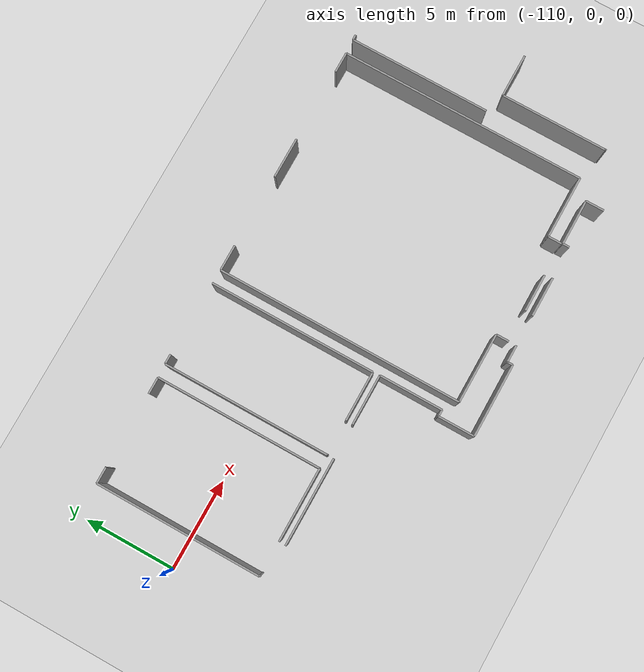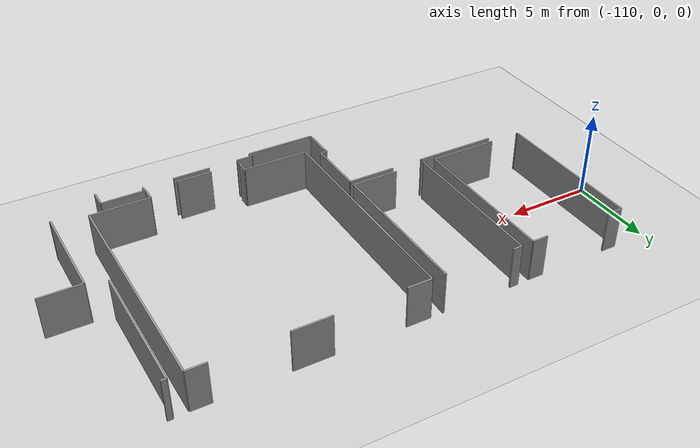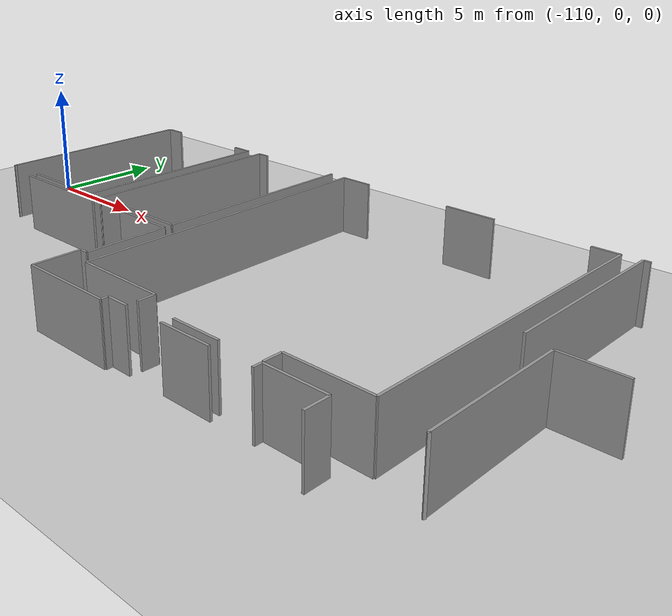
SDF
<sdf version="1.6">
 <world name="default">
  <model name="ground_plane">
   <static>1</static>
   <link name="link">
    <collision name="collision">
     <geometry><plane><normal>0 0 1</normal><size>100 100</size></plane></geometry>
     <surface><friction><ode><mu>100</mu><mu2>50</mu2></ode></friction></surface>
    </collision>
    <visual name="visual">
     <cast_shadows>0</cast_shadows>
     <geometry><plane><normal>0 0 1</normal><size>100 100</size></plane></geometry>
     <material>
      <script><uri>file://media/materials/scripts/gazebo.material</uri><name>Gazebo/Grey</name></script>
     </material>
    </visual>
   </link>
  </model>
  <model name="0510035343_A_40_1_102">
   <static>1</static>
   <link name="Wall_12">
    <collision name="Wall_12_Collision">
     <geometry><box><size>4.78415690755 0.1 2.5</size></box></geometry>
     <pose>2.39207845378 0 1.25 0 0 0</pose>
    </collision>
    <visual name="Wall_12_Visual">
     <pose>2.39207845378 0 1.25 0 0 0</pose>
     <geometry><box><size>4.78415690755 0.1 2.5</size></box></geometry>
     <material>
      <script><uri>file://media/materials/scripts/gazebo.material</uri><name>Gazebo/Grey</name></script>
      <ambient>1 1 1 1</ambient>
     </material>
    </visual>
    <pose>10.6791075566 -28.6828525183 0 0 0 0.0</pose>
   </link>
   <link name="Wall_13">
    <collision name="Wall_13_Collision">
     <geometry><box><size>2.77127170015 0.1 2.5</size></box></geometry>
     <pose>1.38563585007 0 1.25 0 0 0</pose>
    </collision>
    <visual name="Wall_13_Visual">
     <pose>1.38563585007 0 1.25 0 0 0</pose>
     <geometry><box><size>2.77127170015 0.1 2.5</size></box></geometry>
     <material>
      <script><uri>file://media/materials/scripts/gazebo.material</uri><name>Gazebo/Grey</name></script>
      <ambient>1 1 1 1</ambient>
     </material>
    </visual>
    <pose>17.3469167539 -28.6828525183 0 0 0 0.0</pose>
   </link>
   <link name="Wall_14">
    <collision name="Wall_14_Collision">
     <geometry><box><size>3.48776540036 0.1 2.5</size></box></geometry>
     <pose>1.74388270018 0 1.25 0 0 0</pose>
    </collision>
    <visual name="Wall_14_Visual">
     <pose>1.74388270018 0 1.25 0 0 0</pose>
     <geometry><box><size>3.48776540036 0.1 2.5</size></box></geometry>
     <material>
      <script><uri>file://media/materials/scripts/gazebo.material</uri><name>Gazebo/Grey</name></script>
      <ambient>1 1 1 1</ambient>
     </material>
    </visual>
    <pose>20.1181884541 -28.6828525183 0 0 0 -1.57079632679</pose>
   </link>
   <link name="Wall_15">
    <collision name="Wall_15_Collision">
     <geometry><box><size>0.367133200038 0.1 2.5</size></box></geometry>
     <pose>0.183566600019 0 1.25 0 0 0</pose>
    </collision>
    <visual name="Wall_15_Visual">
     <pose>0.183566600019 0 1.25 0 0 0</pose>
     <geometry><box><size>0.367133200038 0.1 2.5</size></box></geometry>
     <material>
      <script><uri>file://media/materials/scripts/gazebo.material</uri><name>Gazebo/Grey</name></script>
      <ambient>1 1 1 1</ambient>
     </material>
    </visual>
    <pose>20.1181884541 -32.1706179187 0 0 0 3.14159265359</pose>
   </link>
   <link name="Wall_16">
    <collision name="Wall_16_Collision">
     <geometry><box><size>1.98673394903 0.1 2.5</size></box></geometry>
     <pose>0.993366974515 0 1.25 0 0 0</pose>
    </collision>
    <visual name="Wall_16_Visual">
     <pose>0.993366974515 0 1.25 0 0 0</pose>
     <geometry><box><size>1.98673394903 0.1 2.5</size></box></geometry>
     <material>
      <script><uri>file://media/materials/scripts/gazebo.material</uri><name>Gazebo/Grey</name></script>
      <ambient>1 1 1 1</ambient>
     </material>
    </visual>
    <pose>19.7510552541 -32.1706179187 0 0 0 -1.57079632679</pose>
   </link>
   <link name="Wall_17">
    <collision name="Wall_17_Collision">
     <geometry><box><size>4.00571265353 0.1 2.5</size></box></geometry>
     <pose>2.00285632676 0 1.25 0 0 0</pose>
    </collision>
    <visual name="Wall_17_Visual">
     <pose>2.00285632676 0 1.25 0 0 0</pose>
     <geometry><box><size>4.00571265353 0.1 2.5</size></box></geometry>
     <material>
      <script><uri>file://media/materials/scripts/gazebo.material</uri><name>Gazebo/Grey</name></script>
      <ambient>1 1 1 1</ambient>
     </material>
    </visual>
    <pose>19.7510552541 -34.1573518677 0 0 0 0.0</pose>
   </link>
   <link name="Wall_18">
    <collision name="Wall_18_Collision">
     <geometry><box><size>0.300104731981 0.1 2.5</size></box></geometry>
     <pose>0.150052365991 0 1.25 0 0 0</pose>
    </collision>
    <visual name="Wall_18_Visual">
     <pose>0.150052365991 0 1.25 0 0 0</pose>
     <geometry><box><size>0.300104731981 0.1 2.5</size></box></geometry>
     <material>
      <script><uri>file://media/materials/scripts/gazebo.material</uri><name>Gazebo/Grey</name></script>
      <ambient>1 1 1 1</ambient>
     </material>
    </visual>
    <pose>23.7567679076 -34.1573518677 0 0 0 1.57079632679</pose>
   </link>
   <link name="Wall_19">
    <collision name="Wall_19_Collision">
     <geometry><box><size>0.934082325685 0.1 2.5</size></box></geometry>
     <pose>0.467041162842 0 1.25 0 0 0</pose>
    </collision>
    <visual name="Wall_19_Visual">
     <pose>0.467041162842 0 1.25 0 0 0</pose>
     <geometry><box><size>0.934082325685 0.1 2.5</size></box></geometry>
     <material>
      <script><uri>file://media/materials/scripts/gazebo.material</uri><name>Gazebo/Grey</name></script>
      <ambient>1 1 1 1</ambient>
     </material>
    </visual>
    <pose>23.7567679076 -33.8572471357 0 0 0 0.0</pose>
   </link>
   <link name="Wall_20">
    <collision name="Wall_20_Collision">
     <geometry><box><size>2.16242978197 0.1 2.5</size></box></geometry>
     <pose>1.08121489098 0 1.25 0 0 0</pose>
    </collision>
    <visual name="Wall_20_Visual">
     <pose>1.08121489098 0 1.25 0 0 0</pose>
     <geometry><box><size>2.16242978197 0.1 2.5</size></box></geometry>
     <material>
      <script><uri>file://media/materials/scripts/gazebo.material</uri><name>Gazebo/Grey</name></script>
      <ambient>1 1 1 1</ambient>
     </material>
    </visual>
    <pose>26.3932209845 -33.8572471357 0 0 0 0.0</pose>
   </link>
   <link name="Wall_21">
    <collision name="Wall_21_Collision">
     <geometry><box><size>0.365863721476 0.1 2.5</size></box></geometry>
     <pose>0.182931860738 0 1.25 0 0 0</pose>
    </collision>
    <visual name="Wall_21_Visual">
     <pose>0.182931860738 0 1.25 0 0 0</pose>
     <geometry><box><size>0.365863721476 0.1 2.5</size></box></geometry>
     <material>
      <script><uri>file://media/materials/scripts/gazebo.material</uri><name>Gazebo/Grey</name></script>
      <ambient>1 1 1 1</ambient>
     </material>
    </visual>
    <pose>30.3458694341 -33.8572471357 0 0 0 1.57079632679</pose>
   </link>
   <link name="Wall_22">
    <collision name="Wall_22_Collision">
     <geometry><box><size>2.49960328795 0.1 2.5</size></box></geometry>
     <pose>1.24980164397 0 1.25 0 0 0</pose>
    </collision>
    <visual name="Wall_22_Visual">
     <pose>1.24980164397 0 1.25 0 0 0</pose>
     <geometry><box><size>2.49960328795 0.1 2.5</size></box></geometry>
     <material>
      <script><uri>file://media/materials/scripts/gazebo.material</uri><name>Gazebo/Grey</name></script>
      <ambient>1 1 1 1</ambient>
     </material>
    </visual>
    <pose>30.3458694341 -33.4913834143 0 0 0 0.0</pose>
   </link>
   <link name="Wall_23">
    <collision name="Wall_23_Collision">
     <geometry><box><size>1.00974324796 0.1 2.5</size></box></geometry>
     <pose>0.50487162398 0 1.25 0 0 0</pose>
    </collision>
    <visual name="Wall_23_Visual">
     <pose>0.50487162398 0 1.25 0 0 0</pose>
     <geometry><box><size>1.00974324796 0.1 2.5</size></box></geometry>
     <material>
      <script><uri>file://media/materials/scripts/gazebo.material</uri><name>Gazebo/Grey</name></script>
      <ambient>1 1 1 1</ambient>
     </material>
    </visual>
    <pose>32.8454727221 -33.4913834143 0 0 0 -1.57079632679</pose>
   </link>
   <link name="Wall_56">
    <collision name="Wall_56_Collision">
     <geometry><box><size>9.10774699292 0.1 2.5</size></box></geometry>
     <pose>4.55387349646 0 1.25 0 0 0</pose>
    </collision>
    <visual name="Wall_56_Visual">
     <pose>4.55387349646 0 1.25 0 0 0</pose>
     <geometry><box><size>9.10774699292 0.1 2.5</size></box></geometry>
     <material>
      <script><uri>file://media/materials/scripts/gazebo.material</uri><name>Gazebo/Grey</name></script>
      <ambient>1 1 1 1</ambient>
     </material>
    </visual>
    <pose>8.80865784379 -28.3098797169 0 0 0 1.57079632679</pose>
   </link>
   <link name="Wall_57">
    <collision name="Wall_57_Collision">
     <geometry><box><size>0.89549017741 0.1 2.5</size></box></geometry>
     <pose>0.447745088705 0 1.25 0 0 0</pose>
    </collision>
    <visual name="Wall_57_Visual">
     <pose>0.447745088705 0 1.25 0 0 0</pose>
     <geometry><box><size>0.89549017741 0.1 2.5</size></box></geometry>
     <material>
      <script><uri>file://media/materials/scripts/gazebo.material</uri><name>Gazebo/Grey</name></script>
      <ambient>1 1 1 1</ambient>
     </material>
    </visual>
    <pose>8.80865784379 -19.202132724 0 0 0 0.0</pose>
   </link>
   <link name="Wall_58">
    <collision name="Wall_58_Collision">
     <geometry><box><size>0.913008981561 0.1 2.5</size></box></geometry>
     <pose>0.45650449078 0 1.25 0 0 0</pose>
    </collision>
    <visual name="Wall_58_Visual">
     <pose>0.45650449078 0 1.25 0 0 0</pose>
     <geometry><box><size>0.913008981561 0.1 2.5</size></box></geometry>
     <material>
      <script><uri>file://media/materials/scripts/gazebo.material</uri><name>Gazebo/Grey</name></script>
      <ambient>1 1 1 1</ambient>
     </material>
    </visual>
    <pose>13.8038020883 -19.202132724 0 0 0 0.0</pose>
   </link>
   <link name="Wall_59">
    <collision name="Wall_59_Collision">
     <geometry><box><size>9.11587165572 0.1 2.5</size></box></geometry>
     <pose>4.55793582786 0 1.25 0 0 0</pose>
    </collision>
    <visual name="Wall_59_Visual">
     <pose>4.55793582786 0 1.25 0 0 0</pose>
     <geometry><box><size>9.11587165572 0.1 2.5</size></box></geometry>
     <material>
      <script><uri>file://media/materials/scripts/gazebo.material</uri><name>Gazebo/Grey</name></script>
      <ambient>1 1 1 1</ambient>
     </material>
    </visual>
    <pose>14.7168110699 -19.202132724 0 0 0 -1.57079632679</pose>
   </link>
   <link name="Wall_60">
    <collision name="Wall_60_Collision">
     <geometry><box><size>4.0173918563 0.1 2.5</size></box></geometry>
     <pose>2.00869592815 0 1.25 0 0 0</pose>
    </collision>
    <visual name="Wall_60_Visual">
     <pose>2.00869592815 0 1.25 0 0 0</pose>
     <geometry><box><size>4.0173918563 0.1 2.5</size></box></geometry>
     <material>
      <script><uri>file://media/materials/scripts/gazebo.material</uri><name>Gazebo/Grey</name></script>
      <ambient>1 1 1 1</ambient>
     </material>
    </visual>
    <pose>14.7168110699 -28.3180043797 0 0 0 3.14159265359</pose>
   </link>
   <link name="Wall_61">
    <collision name="Wall_61_Collision">
     <geometry><box><size>0.0740766575865 0.1 2.5</size></box></geometry>
     <pose>0.0370383287933 0 1.25 0 0 0</pose>
    </collision>
    <visual name="Wall_61_Visual">
     <pose>0.0370383287933 0 1.25 0 0 0</pose>
     <geometry><box><size>0.0740766575865 0.1 2.5</size></box></geometry>
     <material>
      <script><uri>file://media/materials/scripts/gazebo.material</uri><name>Gazebo/Grey</name></script>
      <ambient>1 1 1 1</ambient>
     </material>
    </visual>
    <pose>8.88228760037 -28.3180043797 0 0 0 3.03169243454</pose>
   </link>
   <link name="Wall_62">
    <collision name="Wall_62_Collision">
     <geometry><box><size>9.16411184106 0.1 2.5</size></box></geometry>
     <pose>4.58205592053 0 1.25 0 0 0</pose>
    </collision>
    <visual name="Wall_62_Visual">
     <pose>4.58205592053 0 1.25 0 0 0</pose>
     <geometry><box><size>9.16411184106 0.1 2.5</size></box></geometry>
     <material>
      <script><uri>file://media/materials/scripts/gazebo.material</uri><name>Gazebo/Grey</name></script>
      <ambient>1 1 1 1</ambient>
     </material>
    </visual>
    <pose>15.4637722555 -28.3294296868 0 0 0 1.57079632679</pose>
   </link>
   <link name="Wall_63">
    <collision name="Wall_63_Collision">
     <geometry><box><size>0.53470437018 0.1 2.5</size></box></geometry>
     <pose>0.26735218509 0 1.25 0 0 0</pose>
    </collision>
    <visual name="Wall_63_Visual">
     <pose>0.26735218509 0 1.25 0 0 0</pose>
     <geometry><box><size>0.53470437018 0.1 2.5</size></box></geometry>
     <material>
      <script><uri>file://media/materials/scripts/gazebo.material</uri><name>Gazebo/Grey</name></script>
      <ambient>1 1 1 1</ambient>
     </material>
    </visual>
    <pose>15.4637722555 -19.1653178457 0 0 0 0.0</pose>
   </link>
   <link name="Wall_64">
    <collision name="Wall_64_Collision">
     <geometry><box><size>9.13923006125 0.1 2.5</size></box></geometry>
     <pose>4.56961503063 0 1.25 0 0 0</pose>
    </collision>
    <visual name="Wall_64_Visual">
     <pose>4.56961503063 0 1.25 0 0 0</pose>
     <geometry><box><size>9.13923006125 0.1 2.5</size></box></geometry>
     <material>
      <script><uri>file://media/materials/scripts/gazebo.material</uri><name>Gazebo/Grey</name></script>
      <ambient>1 1 1 1</ambient>
     </material>
    </visual>
    <pose>20.0927988829 -19.1653178457 0 0 0 -1.57079632679</pose>
   </link>
   <link name="Wall_65">
    <collision name="Wall_65_Collision">
     <geometry><box><size>2.73674188327 0.1 2.5</size></box></geometry>
     <pose>1.36837094164 0 1.25 0 0 0</pose>
    </collision>
    <visual name="Wall_65_Visual">
     <pose>1.36837094164 0 1.25 0 0 0</pose>
     <geometry><box><size>2.73674188327 0.1 2.5</size></box></geometry>
     <material>
      <script><uri>file://media/materials/scripts/gazebo.material</uri><name>Gazebo/Grey</name></script>
      <ambient>1 1 1 1</ambient>
     </material>
    </visual>
    <pose>20.0927988829 -28.3045479069 0 0 0 3.14159265359</pose>
   </link>
   <link name="Wall_66">
    <collision name="Wall_66_Collision">
     <geometry><box><size>0.044856266463 0.1 2.5</size></box></geometry>
     <pose>0.0224281332315 0 1.25 0 0 0</pose>
    </collision>
    <visual name="Wall_66_Visual">
     <pose>0.0224281332315 0 1.25 0 0 0</pose>
     <geometry><box><size>0.044856266463 0.1 2.5</size></box></geometry>
     <material>
      <script><uri>file://media/materials/scripts/gazebo.material</uri><name>Gazebo/Grey</name></script>
      <ambient>1 1 1 1</ambient>
     </material>
    </visual>
    <pose>15.5010949253 -28.3045479069 0 0 0 -2.55359005004</pose>
   </link>
   <link name="Wall_67">
    <collision name="Wall_67_Collision">
     <geometry><box><size>13.5029356692 0.1 2.5</size></box></geometry>
     <pose>6.75146783459 0 1.25 0 0 0</pose>
    </collision>
    <visual name="Wall_67_Visual">
     <pose>6.75146783459 0 1.25 0 0 0</pose>
     <geometry><box><size>13.5029356692 0.1 2.5</size></box></geometry>
     <material>
      <script><uri>file://media/materials/scripts/gazebo.material</uri><name>Gazebo/Grey</name></script>
      <ambient>1 1 1 1</ambient>
     </material>
    </visual>
    <pose>20.8618489955 -32.7175092831 0 0 0 1.57079632679</pose>
   </link>
   <link name="Wall_68">
    <collision name="Wall_68_Collision">
     <geometry><box><size>1.4180075534 0.1 2.5</size></box></geometry>
     <pose>0.709003776699 0 1.25 0 0 0</pose>
    </collision>
    <visual name="Wall_68_Visual">
     <pose>0.709003776699 0 1.25 0 0 0</pose>
     <geometry><box><size>1.4180075534 0.1 2.5</size></box></geometry>
     <material>
      <script><uri>file://media/materials/scripts/gazebo.material</uri><name>Gazebo/Grey</name></script>
      <ambient>1 1 1 1</ambient>
     </material>
    </visual>
    <pose>20.8618489955 -19.2145736139 0 0 0 0.0</pose>
   </link>
   <link name="Wall_69">
    <collision name="Wall_69_Collision">
     <geometry><box><size>2.23631343426 0.1 2.5</size></box></geometry>
     <pose>1.11815671713 0 1.25 0 0 0</pose>
    </collision>
    <visual name="Wall_69_Visual">
     <pose>1.11815671713 0 1.25 0 0 0</pose>
     <geometry><box><size>2.23631343426 0.1 2.5</size></box></geometry>
     <material>
      <script><uri>file://media/materials/scripts/gazebo.material</uri><name>Gazebo/Grey</name></script>
      <ambient>1 1 1 1</ambient>
     </material>
    </visual>
    <pose>26.3193373322 -19.2145736139 0 0 0 0.0</pose>
   </link>
   <link name="Wall_70">
    <collision name="Wall_70_Collision">
     <geometry><box><size>1.13059760703 0.1 2.5</size></box></geometry>
     <pose>0.565298803516 0 1.25 0 0 0</pose>
    </collision>
    <visual name="Wall_70_Visual">
     <pose>0.565298803516 0 1.25 0 0 0</pose>
     <geometry><box><size>1.13059760703 0.1 2.5</size></box></geometry>
     <material>
      <script><uri>file://media/materials/scripts/gazebo.material</uri><name>Gazebo/Grey</name></script>
      <ambient>1 1 1 1</ambient>
     </material>
    </visual>
    <pose>32.6060490653 -19.2145736139 0 0 0 0.0</pose>
   </link>
   <link name="Wall_71">
    <collision name="Wall_71_Collision">
     <geometry><box><size>13.4696753309 0.1 2.5</size></box></geometry>
     <pose>6.73483766543 0 1.25 0 0 0</pose>
    </collision>
    <visual name="Wall_71_Visual">
     <pose>6.73483766543 0 1.25 0 0 0</pose>
     <geometry><box><size>13.4696753309 0.1 2.5</size></box></geometry>
     <material>
      <script><uri>file://media/materials/scripts/gazebo.material</uri><name>Gazebo/Grey</name></script>
      <ambient>1 1 1 1</ambient>
     </material>
    </visual>
    <pose>33.7366466724 -19.2145736139 0 0 0 -1.57079632679</pose>
   </link>
   <link name="Wall_72">
    <collision name="Wall_72_Collision">
     <geometry><box><size>3.42073693231 0.1 2.5</size></box></geometry>
     <pose>1.71036846615 0 1.25 0 0 0</pose>
    </collision>
    <visual name="Wall_72_Visual">
     <pose>1.71036846615 0 1.25 0 0 0</pose>
     <geometry><box><size>3.42073693231 0.1 2.5</size></box></geometry>
     <material>
      <script><uri>file://media/materials/scripts/gazebo.material</uri><name>Gazebo/Grey</name></script>
      <ambient>1 1 1 1</ambient>
     </material>
    </visual>
    <pose>33.7366466724 -32.6842489447 0 0 0 3.14159265359</pose>
   </link>
   <link name="Wall_73">
    <collision name="Wall_73_Collision">
     <geometry><box><size>0.750769621378 0.1 2.5</size></box></geometry>
     <pose>0.375384810689 0 1.25 0 0 0</pose>
    </collision>
    <visual name="Wall_73_Visual">
     <pose>0.375384810689 0 1.25 0 0 0</pose>
     <geometry><box><size>0.750769621378 0.1 2.5</size></box></geometry>
     <material>
      <script><uri>file://media/materials/scripts/gazebo.material</uri><name>Gazebo/Grey</name></script>
      <ambient>1 1 1 1</ambient>
     </material>
    </visual>
    <pose>30.3159097401 -32.6842489447 0 0 0 -1.57079632679</pose>
   </link>
   <link name="Wall_74">
    <collision name="Wall_74_Collision">
     <geometry><box><size>2.03243517725 0.1 2.5</size></box></geometry>
     <pose>1.01621758863 0 1.25 0 0 0</pose>
    </collision>
    <visual name="Wall_74_Visual">
     <pose>1.01621758863 0 1.25 0 0 0</pose>
     <geometry><box><size>2.03243517725 0.1 2.5</size></box></geometry>
     <material>
      <script><uri>file://media/materials/scripts/gazebo.material</uri><name>Gazebo/Grey</name></script>
      <ambient>1 1 1 1</ambient>
     </material>
    </visual>
    <pose>28.4903995684 -33.4350185661 0 0 0 3.14159265359</pose>
   </link>
   <link name="Wall_75">
    <collision name="Wall_75_Collision">
     <geometry><box><size>0.701767748897 0.1 2.5</size></box></geometry>
     <pose>0.350883874449 0 1.25 0 0 0</pose>
    </collision>
    <visual name="Wall_75_Visual">
     <pose>0.350883874449 0 1.25 0 0 0</pose>
     <geometry><box><size>0.701767748897 0.1 2.5</size></box></geometry>
     <material>
      <script><uri>file://media/materials/scripts/gazebo.material</uri><name>Gazebo/Grey</name></script>
      <ambient>1 1 1 1</ambient>
     </material>
    </visual>
    <pose>24.6918658161 -33.4350185661 0 0 0 1.57079632679</pose>
   </link>
   <link name="Wall_76">
    <collision name="Wall_76_Collision">
     <geometry><box><size>3.83004916965 0.1 2.5</size></box></geometry>
     <pose>1.91502458482 0 1.25 0 0 0</pose>
    </collision>
    <visual name="Wall_76_Visual">
     <pose>1.91502458482 0 1.25 0 0 0</pose>
     <geometry><box><size>3.83004916965 0.1 2.5</size></box></geometry>
     <material>
      <script><uri>file://media/materials/scripts/gazebo.material</uri><name>Gazebo/Grey</name></script>
      <ambient>1 1 1 1</ambient>
     </material>
    </visual>
    <pose>24.6918658161 -32.7332508172 0 0 0 3.13748263364</pose>
   </link>
   <link name="Wall_412">
    <collision name="Wall_412_Collision">
     <geometry><box><size>7.73848741629 0.1 2.5</size></box></geometry>
     <pose>3.86924370815 0 1.25 0 0 0</pose>
    </collision>
    <visual name="Wall_412_Visual">
     <pose>3.86924370815 0 1.25 0 0 0</pose>
     <geometry><box><size>7.73848741629 0.1 2.5</size></box></geometry>
     <material>
      <script><uri>file://media/materials/scripts/gazebo.material</uri><name>Gazebo/Grey</name></script>
      <ambient>1 1 1 1</ambient>
     </material>
    </visual>
    <pose>34.5369259577 -26.902027992 0 0 0 1.57079632679</pose>
   </link>
   <link name="Wall_413">
    <collision name="Wall_413_Collision">
     <geometry><box><size>0.282078136405 0.1 2.5</size></box></geometry>
     <pose>0.141039068203 0 1.25 0 0 0</pose>
    </collision>
    <visual name="Wall_413_Visual">
     <pose>0.141039068203 0 1.25 0 0 0</pose>
     <geometry><box><size>0.282078136405 0.1 2.5</size></box></geometry>
     <material>
      <script><uri>file://media/materials/scripts/gazebo.material</uri><name>Gazebo/Grey</name></script>
      <ambient>1 1 1 1</ambient>
     </material>
    </visual>
    <pose>34.5369259577 -19.1635405757 0 0 0 0.0</pose>
   </link>
   <link name="Wall_459">
    <collision name="Wall_459_Collision">
     <geometry><box><size>5.86626043353 0.1 2.5</size></box></geometry>
     <pose>2.93313021676 0 1.25 0 0 0</pose>
    </collision>
    <visual name="Wall_459_Visual">
     <pose>2.93313021676 0 1.25 0 0 0</pose>
     <geometry><box><size>5.86626043353 0.1 2.5</size></box></geometry>
     <material>
      <script><uri>file://media/materials/scripts/gazebo.material</uri><name>Gazebo/Grey</name></script>
      <ambient>1 1 1 1</ambient>
     </material>
    </visual>
    <pose>35.6685391475 -33.11739503 0 0 0 1.57079632679</pose>
   </link>
   <link name="Wall_460">
    <collision name="Wall_460_Collision">
     <geometry><box><size>2.37697165889 0.1 2.5</size></box></geometry>
     <pose>1.18848582945 0 1.25 0 0 0</pose>
    </collision>
    <visual name="Wall_460_Visual">
     <pose>1.18848582945 0 1.25 0 0 0</pose>
     <geometry><box><size>2.37697165889 0.1 2.5</size></box></geometry>
     <material>
      <script><uri>file://media/materials/scripts/gazebo.material</uri><name>Gazebo/Grey</name></script>
      <ambient>1 1 1 1</ambient>
     </material>
    </visual>
    <pose>35.6685391475 -27.2511345965 0 0 0 0.0</pose>
   </link>
   <link name="Wall_476">
    <collision name="Wall_476_Collision">
     <geometry><box><size>0.0619240139421 0.1 2.5</size></box></geometry>
     <pose>0.030962006971 0 1.25 0 0 0</pose>
    </collision>
    <visual name="Wall_476_Visual">
     <pose>0.030962006971 0 1.25 0 0 0</pose>
     <geometry><box><size>0.0619240139421 0.1 2.5</size></box></geometry>
     <material>
      <script><uri>file://media/materials/scripts/gazebo.material</uri><name>Gazebo/Grey</name></script>
      <ambient>1 1 1 1</ambient>
     </material>
    </visual>
    <pose>35.72287283 -33.1471008283 0 0 0 2.64126425683</pose>
   </link>
   <pose>-116.8 24.3141911835 0 0 0 0</pose>
  </model>
 </world>
</sdf>
